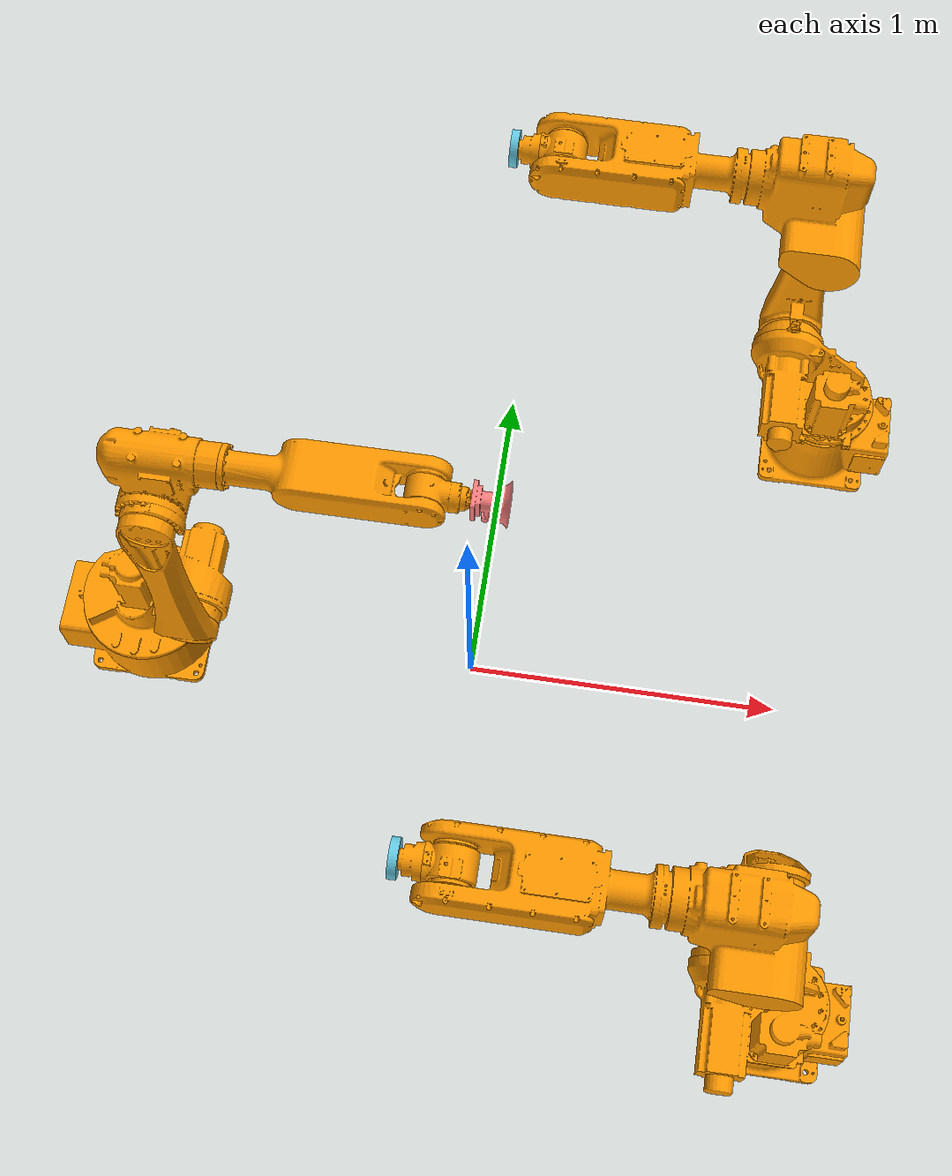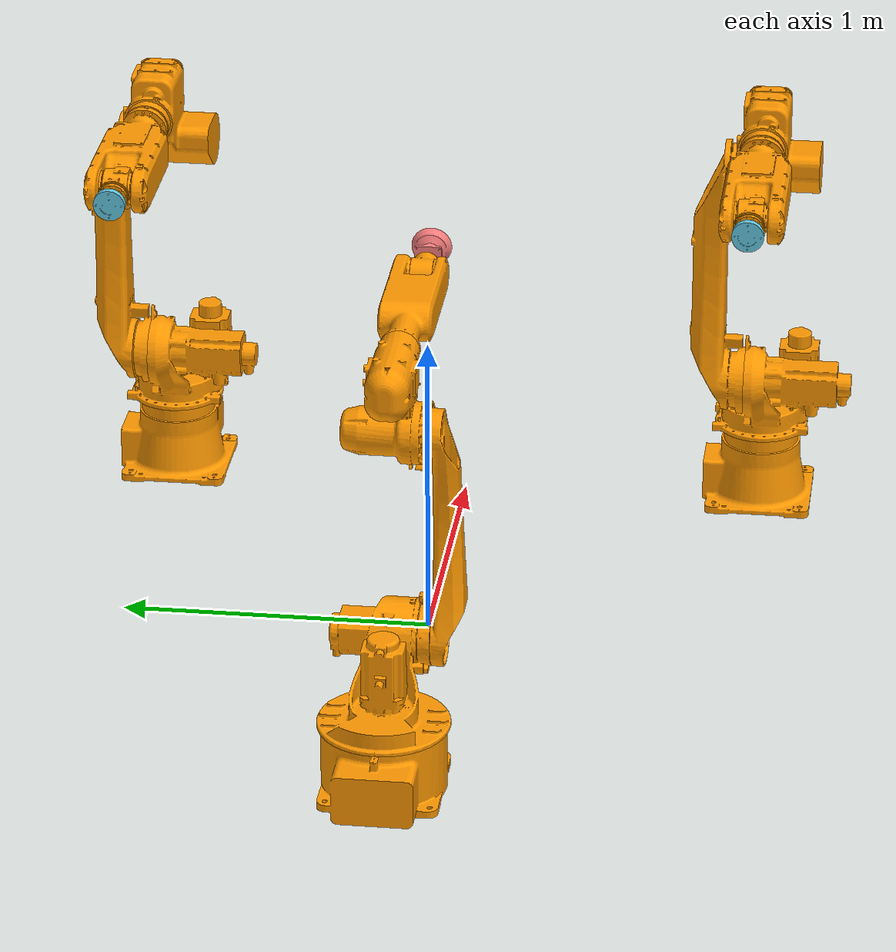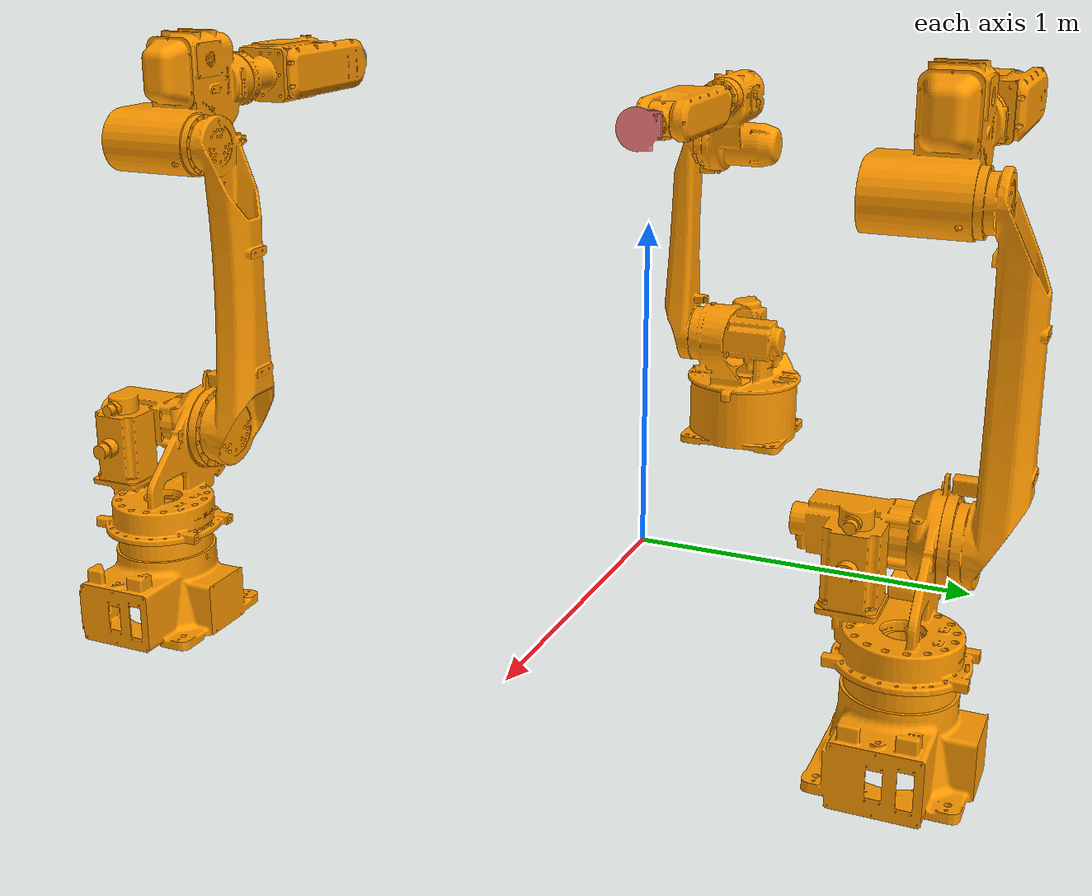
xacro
<?xml version="1.0"?>
<robot name="assembly" xmlns:xacro="http://wiki.ros.org/xacro" >

    <!-- sai号-->
    <material name="LightGrey">
        <color rgba="0.7 0.7 0.7 1.0"/>
    </material>
    <material name="Orange">
        <color rgba="1 0.6 0 1.0"/>
    </material>
    <material name="blue">
        <color rgba="0.4 0.8 0.9 1.0"/>
    </material>

    <!-- 包含末端工具与桌子描述文件-->
    <xacro:include filename="$(find multibot_efort)/urdf/env.urdf.xacro" />
    <!-- polishing tool -->
    <xacro:include filename="$(find multibot_efort)/urdf/polish_tool.urdf.xacro" />
    <!-- DH robotics gripper -->

    <!-- 包含机器人描述文件-->
        <!-- er10-->
    <xacro:include filename="$(find multibot_efort)/urdf/er10.urdf.xacro" />
        <!-- er20-->
    <xacro:property name="prefix1" value="left"/>
    <xacro:property name="prefix2" value="right"/>
    <xacro:include filename="$(find multibot_efort)/urdf/er20.urdf.xacro" />

    <!-- 创建机器人-->
    <xacro:er10 joint_limited="true" />
    <xacro:er20 prefix="left" joint_limited="true" />
    <xacro:er20 prefix="right" joint_limited="true" />

    <!-- 创建末端工具，桌子-->
    <xacro:flange prefix="left" />
    <xacro:flange prefix="right" />
    <xacro:polishing_tool/>
    <!-- TODO embed URDF in xacro -->

    <!-- 工具绑定到机器人末端-->
        <!-- left flange-->
    <joint name="${prefix1}_flange_joint" type="fixed">
        <parent link="${prefix1}_link_6"/>
        <child link="${prefix1}_flange" />
        <origin xyz="0.0615 0.0 0.0" rpy="0.0 0.0 0.0"/>
    </joint>

        <!-- right flange-->
    <joint name="${prefix2}_flange_joint" type="fixed">
        <parent link="${prefix2}_link_6"/>
        <child link="${prefix2}_flange" />
        <origin xyz="0.0615 0.0 0.0" rpy="0.0 0.0 0.0"/>
    </joint>

        <!-- gun-->

    <joint name="polish_tool_fix" type="fixed">
        <parent link="link_6"/>
        <child link="polishing_tool"/>
        <origin xyz="0.03 0.0 0.0" rpy="0.0 1.57 0.0"/>
    </joint>

    <!-- 创建世界坐标系，布局的绝对参考坐标，桌子与世界坐标重合-->
    <link name="world"/>

        <!-- left er20 robot-->
    <joint name="${prefix1}_er20_world_joint" type="fixed">
        <parent link="world"/>
        <child link="${prefix1}_base_link" />
        <origin xyz="1.05 -1 0.015" rpy="0.0 0.0 3.1416"/>
    </joint>
        <!-- right er20 robot-->
    <joint name="${prefix2}_er20_world_joint" type="fixed">
        <parent link="world"/>
        <child link="${prefix2}_base_link" />
        <origin xyz="1.05 1 0.015" rpy="0.0 0.0 -3.1416"/>
    </joint>
        <!-- er10 robot-->
    <joint name="er10_world_joint" type="fixed">
        <parent link="world"/>
        <child link="base_link" />
        <origin xyz="-1.05 0.0 0.015" rpy="0.0 0.0 0.0"/>
    </joint>

</robot>

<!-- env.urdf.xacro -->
<robot xmlns:xacro="http://wiki.ros.org/xacro">

    <!-- 桌子只需一个,无需前缀-->
    <xacro:macro name="table" >
        <link name="table">
            <inertial>
                <origin xyz="-0.01951 -0.0044947 0.72865"
                        rpy="0 0 0" />
                <mass value="10.085" />
                <inertia ixx="1.24263631054945" ixy="0.0804535114069114" ixz="0.0139586437225214"
                        iyy="0.840241125299175" iyz="0.00269664896323875" izz="1.26410505522419" />
            </inertial>

            <visual>
                <origin xyz="0 0 0"
                        rpy="0 0 0" />
                <geometry>
                <mesh filename="package://multibot_efort/meshes/table.STL" />
                </geometry>
                <material name="LightGrey"/>
            </visual>

            <collision>
                <origin xyz="0 0 0"
                        rpy="0 0 0" />
                <geometry>
                <mesh filename="package://multibot_efort/meshes/table.STL" />
                </geometry>
            </collision>
        </link>
    </xacro:macro>

    <!-- flange，需要前缀-->
    <xacro:macro name="flange" params="prefix" >
        <link name="${prefix}_flange">
            <inertial>
            <origin xyz="0.010382 0 0"
                    rpy="0 0 0" />
            <mass value="0.12975" />
            <inertia ixx="0.00019316467668396" ixy="0" ixz="0"
                    iyy="0.000102344046242558" iyz="0" izz="0.000102344046242558" />
            </inertial>

            <visual>
            <origin xyz="0 0 0"
                    rpy="0 0 0" />
            <geometry>
                <mesh filename="package://multibot_efort/meshes/flange.STL" />
            </geometry>
            <material name="blue"/>
            </visual>

            <collision>
            <origin xyz="0 0 0"
                    rpy="0 0 0" />
            <geometry>
                <mesh filename="package://multibot_efort/meshes/flange.STL" />
            </geometry>
            </collision>
        </link>
    </xacro:macro>

    <!-- gun，无需前缀-->
    <xacro:macro name="gun" >
        <link name="gun">
            <inertial>
              <origin xyz="0.13691 0 -0.0083983"
                      rpy="0 0 0" />
              <mass value="0.2335" />
              <inertia ixx="0.000173441157555519" ixy="0" ixz="0.000364979207229041"
                       iyy="0.00238371074676877" iyz="0" izz="0.0022791073994479" />
            </inertial>

            <visual>
              <origin xyz="0 0 0"
                      rpy="0 0 0" />
              <geometry>
                <mesh filename="package://multibot_efort/meshes/gun.STL" />
              </geometry>
              <material name="blue"/>
            </visual>

            <collision>
              <origin xyz="0 0 0"
                      rpy="0 0 0" />
              <geometry>
                <mesh filename="package://multibot_efort/meshes/gun.STL" />
              </geometry>
            </collision>
        </link>
	<link name="tail_link"/>
	<joint name="tail_joint" type="fixed">
	    <parent link="gun" />
	    <child link="tail_link" />
	    <origin xyz="0.37213 0 -0.11131" rpy="0 0 0" />
	</joint>
    </xacro:macro>

<xacro:macro name="polish_tool">
    <link name="polish_tool">
    <inertial>
      <origin xyz="0.00353630999156922 6.45268012466893E-07 0.0422326873169609" rpy="0 0 0" />
      <mass value="0.2169540245871" />
        <inertia
        ixx="0.00044465109545084"
        ixy="5.63674253738281E-09"
        ixz="3.6069547942308E-06"
        iyy="0.000482096071544166"
        iyz="-6.84564438717888E-09"
        izz="0.000330044803901056" />
    </inertial>
        <visual>
            <origin xyz="0 0 0" rpy="0 0 0" />
            <geometry>
                <mesh filename="package://multibot_efort/meshes/polish_tool.STL" />
            </geometry>
            <material name="">
                <color rgba="1 1 1 1" />
            </material>
        </visual>
        <collision>
            <origin xyz="0 0 0" rpy="0 0 0" />
            <geometry>
                <mesh filename="package://multibot_efort/meshes/polish_tool.STL" />
            </geometry>
        </collision>
    </link>
</xacro:macro>

</robot>

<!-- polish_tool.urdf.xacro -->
<robot xmlns:xacro="http://wiki.ros.org/xacro">

<xacro:macro name="polishing_tool">
  <link name="polishing_tool">
    <inertial>
      <origin
        xyz="0.00353630999156922 6.45268012466893E-07 0.0422326873169609"
        rpy="0 0 0" />
      <mass value="0.2169540245871" />
      <inertia
        ixx="0.00044465109545084"
        ixy="5.63674253738281E-09"
        ixz="3.6069547942308E-06"
        iyy="0.000482096071544166"
        iyz="-6.84564438717888E-09"
        izz="0.000330044803901056" />
    </inertial>
    <visual>
      <origin xyz="0 0 0" rpy="0 0 0" />
      <geometry>
        <mesh filename="package://multibot_efort/meshes/polishing_tool.STL" />
      </geometry>
      <material name="">
        <color rgba="1 0.5 0.5 1" />
      </material>
    </visual>
    <collision>
      <origin xyz="0 0 0" rpy="0 0 0" />
      <geometry>
        <mesh
          filename="package://multibot_efort/meshes/polishing_tool.STL" />
      </geometry>
    </collision>
  </link>
</xacro:macro>
</robot>

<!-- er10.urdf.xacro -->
<robot xmlns:xacro="http://wiki.ros.org/xacro">

    <!-- 因为只需要一台，不需要前缀-->
    <xacro:macro name="er10"
                 params="joint_limited
                         link_1_lower_limit:=-2.8798 link_1_upper_limit:=2.8798
                         link_2_lower_limit:=-2.3562 link_2_upper_limit:=1.3963
                         link_3_lower_limit:=-1.3090 link_3_upper_limit:=2.8449
                         link_4_lower_limit:=-3.1416 link_4_upper_limit:=3.1416
                         link_5_lower_limit:=-2.2689 link_5_upper_limit:=2.2689
                         link_6_lower_limit:=-6.2832 link_6_upper_limit:=6.2832">
        <!-- 定义质量,SW中没有定义材质，值存在问题-->
        <xacro:property name="base_link_mass" value="23.987"/>
        <xacro:property name="link_1_mass" value="15.617"/>
        <xacro:property name="link_2_mass" value="2.9708"/>
        <xacro:property name="link_3_mass" value="11.338"/>
        <xacro:property name="link_4_mass" value="8.7242"/>
        <xacro:property name="link_5_mass" value="0.86404"/>
        <xacro:property name="link_6_mass" value="0.065514"/>

        <link name="base_link">
            <inertial>
              <origin xyz="-0.0056212 0 0.10746"
                      rpy="0 0 0" />
              <mass value="${base_link_mass}" />
              <inertia ixx="0" ixy="0" ixz="0"
                       iyy="0" iyz="0" izz="0" />
            </inertial>

            <visual>
              <geometry>
                <mesh filename="package://multibot_efort/meshes/er10/base_link.STL" />
              </geometry>
              <material name="Orange" />
            </visual>

            <collision>
              <geometry>
                <mesh filename="package://multibot_efort/meshes/er10/base_link.STL" />
              </geometry>
            </collision>
        </link>
        <!-- link1-->
        <link name="link_1">
          <inertial>
            <origin xyz="0.094373 -0.0050175 0.14722"
                    rpy="0 0 0" />
            <mass value="${link_1_mass}" />
            <inertia ixx="0" ixy="0" ixz="0"
                      iyy="0" iyz="0" izz="0" />
          </inertial>

          <visual>
            <geometry>
              <mesh
                filename="package://multibot_efort/meshes/er10/link_1.STL" />
            </geometry>
            <material name="Orange" />
          </visual>

          <collision>
            <geometry>
              <mesh
                filename="package://multibot_efort/meshes/er10/link_1.STL" />
            </geometry>
          </collision>
        </link>

        <joint name="joint_1" type="revolute">
          <origin xyz="0 0 0.21"
                  rpy="0 0 0" />
          <parent link="base_link" />
          <child link="link_1" />
          <axis xyz="0 0 1" />
          <xacro:unless value="${joint_limited}">
              <limit lower="${-2.0 * pi}" upper="${2.0 *pi}" effort="20" velocity="2.9671" />
          </xacro:unless>
          <xacro:if value="${joint_limited}">
              <limit lower="${link_1_lower_limit}" upper="${link_1_upper_limit}" effort="20" velocity="2.9671" />
          </xacro:if>
        </joint>
        <!-- link2-->
        <link name="link_2">
          <inertial>
            <origin xyz="0.0068855 -0.15544 0.30672"
                    rpy="0 0 0" />
            <mass value="${link_2_mass}" />
            <inertia ixx="0" ixy="0" ixz="0"
                      iyy="0" iyz="0" izz="0" />
          </inertial>

          <visual>
            <geometry>
              <mesh
                filename="package://multibot_efort/meshes/er10/link_2.STL" />
            </geometry>
            <material name="Orange" />
          </visual>

          <collision>
            <geometry>
              <mesh filename="package://multibot_efort/meshes/er10/link_2.STL" />
            </geometry>
          </collision>
        </link>

        <joint  name="joint_2" type="revolute">
          <origin  xyz="0.195 0 0.212"
                    rpy="0 0 0" />
          <parent link="link_1" />
          <child  link="link_2" />
          <axis xyz="0 -1 0" />
          <xacro:unless value="${joint_limited}">
              <limit lower="${-2.0 * pi}" upper="${2.0 *pi}" effort="20" velocity="2.9671" />
          </xacro:unless>
          <xacro:if value="${joint_limited}">
              <limit lower="${link_2_lower_limit}" upper="${link_2_upper_limit}" effort="20" velocity="2.7925" />
          </xacro:if>
        </joint>
        <!-- link3-->
        <link  name="link_3">
          <inertial>
            <origin xyz="0.021264 -0.0041182 0.082782"
                    rpy="0 0 0" />
            <mass value="${link_3_mass}" />
            <inertia ixx="0" ixy="0" ixz="0"
                      iyy="0" iyz="0" izz="0" />
          </inertial>

          <visual>
            <geometry>
              <mesh filename="package://multibot_efort/meshes/er10/link_3.STL" />
            </geometry>
            <material name="Orange" />
          </visual>

          <collision>
            <geometry>
              <mesh filename="package://multibot_efort/meshes/er10/link_3.STL" />
            </geometry>
          </collision>
        </link>

        <joint name="joint_3" type="revolute">
          <origin xyz="0 0 0.68"
                  rpy="0 0 0" />
          <parent link="link_2" />
          <child link="link_3" />
          <axis xyz="0 -1 0" />
          <xacro:unless value="${joint_limited}">
              <limit lower="${-2.0 * pi}" upper="${2.0 *pi}" effort="20" velocity="2.9671" />
          </xacro:unless>
          <xacro:if value="${joint_limited}">
              <limit lower="${link_3_lower_limit}" upper="${link_3_upper_limit}"  effort="20" velocity="3.1416" />
          </xacro:if>
        </joint>
        <!-- link4-->
        <link name="link_4">
          <inertial>
            <origin xyz="0.31875 0.0049527 0"
                    rpy="0 0 0" />
            <mass value="${link_4_mass}" />
            <inertia  ixx="0.0072478" ixy="0.0014639" ixz="0"
                      iyy="0.030284"  iyz="0" izz="0.037503" />
          </inertial>

          <visual>
            <geometry>
              <mesh
                filename="package://multibot_efort/meshes/er10/link_4.STL" />
            </geometry>
            <material name="Orange" />
          </visual>

          <collision>
            <geometry>
              <mesh
                filename="package://multibot_efort/meshes/er10/link_4.STL" />
            </geometry>
          </collision>
        </link>

        <joint name="joint_4" type="revolute">
          <origin xyz="0.2045 0 0.175"
                  rpy="0 0 0" />
          <parent link="link_3" />
          <child link="link_4" />
          <axis xyz="1 0 0" />
          <xacro:unless value="${joint_limited}">
              <limit lower="${-2.0 * pi}" upper="${2.0 *pi}" effort="20" velocity="2.9671" />
          </xacro:unless>
          <xacro:if value="${joint_limited}">
              <limit lower="${link_4_lower_limit}" upper="${link_4_upper_limit}"  effort="20" velocity="5.7596" />
          </xacro:if>
        </joint>
        <!-- link5-->
        <link name="link_5">
          <inertial>
            <origin xyz="0.018888 -0.0096333 -0.00018357"
                    rpy="0 0 0" />
            <mass value="${link_5_mass}" />
            <inertia ixx="0.00039655" ixy="-0.00015969" ixz="0"
                      iyy="0.00061483" iyz="0" izz="0.0009914" />
          </inertial>
          <visual>
            <geometry>
              <mesh  filename="package://multibot_efort/meshes/er10/link_5.STL" />
            </geometry>
            <material name="Orange" />
          </visual>

          <collision>
            <geometry>
              <mesh
                filename="package://multibot_efort/meshes/er10/link_5.STL" />
            </geometry>
          </collision>
        </link>

        <joint name="joint_5" type="revolute">
          <origin xyz="0.54 0 0"
                  rpy="0 0 0" />
          <parent link="link_4" />
          <child link="link_5" />
          <axis xyz="0 -1 0" />
          <xacro:unless value="${joint_limited}">
              <limit lower="${-2.0 * pi}" upper="${2.0 *pi}" effort="20" velocity="2.9671" />
          </xacro:unless>
          <xacro:if value="${joint_limited}">
              <limit lower="${link_5_lower_limit}" upper="${link_5_upper_limit}" effort="20" velocity="6.2832" />
          </xacro:if>
        </joint>
        <!-- link6-->
        <link name="link_6">
          <inertial>
            <origin xyz="0.010372 0 0"
                    rpy="0 0 0" />
            <mass value="${link_6_mass}" />
            <inertia ixx="0" ixy="0" ixz="0"
                      iyy="0" iyz="0" izz="0" />
          </inertial>
          <visual>
            <geometry>
              <mesh filename="package://multibot_efort/meshes/er10/link_6.STL" />
            </geometry>
            <material name="Orange" />
          </visual>

          <collision>
            <geometry>
              <mesh filename="package://multibot_efort/meshes/er10/link_6.STL" />
            </geometry>
          </collision>
        </link>

        <joint name="joint_6" type="revolute">
          <origin xyz="0.095 0 0"
                  rpy="0.000 0 0" />
          <parent link="link_5" />
          <child link="link_6" />
          <axis xyz="1 0 0" />
          <xacro:unless value="${joint_limited}">
              <limit lower="${-2.0 * pi}" upper="${2.0 *pi}" effort="20" velocity="2.9671" />
          </xacro:unless>
          <xacro:if value="${joint_limited}">
              <limit lower="${link_6_lower_limit}" upper="${link_6_upper_limit}" effort="10" velocity="10.472" />
          </xacro:if>
        </joint>
    </xacro:macro>
</robot>

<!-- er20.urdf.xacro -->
<robot xmlns:xacro="http://wiki.ros.org/xacro">

    <!-- 需要两台，需要左右前缀-->
    <xacro:macro name="er20"
                 params="prefix joint_limited
                         link_1_lower_limit:=-3.0543 link_1_upper_limit:=3.0543
                         link_2_lower_limit:=-2.4784 link_2_upper_limit:=1.117
                         link_3_lower_limit:=-1.2741 link_3_upper_limit:=2.618
                         link_4_lower_limit:=-3.1067 link_4_upper_limit:=3.1067
                         link_5_lower_limit:=-2.3038 link_5_upper_limit:=2.3038
                         link_6_lower_limit:=-12.566 link_6_upper_limit:=12.566">
        <!-- 定义质量,SW中没有定义材质，值存在问题-->
        <xacro:property name="base_link_mass" value="26.887"/>
        <xacro:property name="link_1_mass" value="26.887"/>
        <xacro:property name="link_2_mass" value="26.887"/>
        <xacro:property name="link_3_mass" value="0.044815"/>
        <xacro:property name="link_4_mass" value="26.887"/>
        <xacro:property name="link_5_mass" value="26.887"/>
        <xacro:property name="link_6_mass" value="26.887"/>

        <link name="${prefix}_base_link">
            <inertial>
              <origin xyz="0.17709 0.15738 0.51058"
                      rpy="0 0 0" />
              <mass value="${base_link_mass}" />
              <inertia ixx="7.994" ixy="0.1741" ixz="-2.937"
                       iyy="8.7913" iyz="0.25399" izz="2.7535" />
            </inertial>

            <visual>
              <geometry>
                <mesh
                  filename="package://multibot_efort/meshes/er20/base_link.STL" />
              </geometry>
              <material name="Orange"/>
            </visual>

            <collision>
              <geometry>
                <mesh
                  filename="package://multibot_efort/meshes/er20/base_link.STL" />
              </geometry>
            </collision>
          </link>

          <link name="${prefix}_link_1">
            <inertial>
              <origin xyz="0.17709 0.15738 0.24258"
                      rpy="0 0 0" />
              <mass value="${link_1_mass}" />
              <inertia ixx="7.994" ixy="0.1741" ixz="-2.937"
                       iyy="8.7913" iyz="0.25399" izz="2.7535" />
            </inertial>

            <visual>
              <geometry>
                <mesh filename="package://multibot_efort/meshes/er20/link_1.STL" />
              </geometry>
              <material name="Orange"/>
            </visual>

            <collision>
              <geometry>
                <mesh
                  filename="package://multibot_efort/meshes/er20/link_1.STL" />
              </geometry>
            </collision>
          </link>

          <joint name="${prefix}_joint_1" type="revolute">
            <origin xyz="0 0 0.268"
                    rpy="0 0 0" />
            <parent link="${prefix}_base_link" />
            <child link="${prefix}_link_1" />
            <axis xyz="0 0 1" />
            <xacro:unless value="${joint_limited}">
                <limit lower="${-2.0 * pi}" upper="${2.0 *pi}" effort="42" velocity="2.9671" />
            </xacro:unless>
            <xacro:if value="${joint_limited}">
                <limit lower="${link_1_lower_limit}" upper="${link_1_upper_limit}" effort="42" velocity="2.9671" />
            </xacro:if>
          </joint>

          <link name="${prefix}_link_2">
            <inertial>
              <origin xyz="0.0070856 0.15738 0.0075837"
                      rpy="0 0 0" />
              <mass value="${link_2_mass}" />
              <inertia ixx="7.994" ixy="0.1741" ixz="-2.937"
                       iyy="8.7913" iyz="0.25399" izz="2.7535" />
            </inertial>

            <visual>
              <geometry>
                <mesh filename="package://multibot_efort/meshes/er20/link_2.STL" />
              </geometry>
              <material name="Orange"/>
            </visual>

            <collision>
              <geometry>
                <mesh filename="package://multibot_efort/meshes/er20/link_2.STL" />
              </geometry>
            </collision>
          </link>

          <joint name="${prefix}_joint_2" type="revolute">
            <origin xyz="0.17 0 0.235"
                    rpy="0 0 0" />
            <parent link="${prefix}_link_1" />
            <child link="${prefix}_link_2" />
            <axis  xyz="0 -1 0" />

            <xacro:unless value="${joint_limited}">
                <limit lower="${-2.0 * pi}" upper="${2.0 *pi}" effort="42" velocity="2.618" />
            </xacro:unless>
            <xacro:if value="${joint_limited}">
                <limit lower="${link_2_lower_limit}" upper="${link_2_upper_limit}" effort="42" velocity="2.618" />
            </xacro:if>
          </joint>

          <link name="${prefix}_link_3">
            <inertial>
              <origin xyz="0.023829 0.17985 0.0088526"
                      rpy="0 0 0" />
              <mass value="${link_3_mass}" />
              <inertia ixx="0" ixy="0" ixz="0"
                       iyy="0" iyz="0" izz="0" />
            </inertial>

            <visual>
              <origin xyz="0 0 0"
                      rpy="0 0 0" />
              <geometry>
                <mesh filename="package://multibot_efort/meshes/er20/link_3.STL" />
              </geometry>
              <material name="Orange"/>
            </visual>

            <collision>
              <geometry>
                <mesh filename="package://multibot_efort/meshes/er20/link_3.STL" />
              </geometry>
            </collision>
          </link>

          <joint name="${prefix}_joint_3" type="revolute">
            <origin xyz="0 0 0.78" rpy="0 0 0" />
            <parent link="${prefix}_link_2" />
            <child link="${prefix}_link_3" />
            <axis xyz="0 -1 0" />

            <xacro:unless value="${joint_limited}">
                <limit lower="${-2.0 * pi}" upper="${2.0 *pi}" effort="42" velocity="2.5482" />
            </xacro:unless>
            <xacro:if value="${joint_limited}">
                <limit lower="${link_3_lower_limit}" upper="${link_3_upper_limit}"  effort="42" velocity="2.5482" />
            </xacro:if>
          </joint>

          <link name="${prefix}_link_4">
            <inertial>
              <origin xyz="-0.25041 0.15738 -0.91242"
                      rpy="0 0 0" />
              <mass value="${link_4_mass}" />
              <inertia ixx="7.994" ixy="0.1741" ixz="-2.937"
                       iyy="8.7913" iyz="0.25399" izz="2.7535" />
            </inertial>

            <visual>
              <geometry>
                <mesh filename="package://multibot_efort/meshes/er20/link_4.STL" />
              </geometry>
              <material name="Orange"/>
            </visual>

            <collision>
              <geometry>
                <mesh filename="package://multibot_efort/meshes/er20/link_4.STL" />
              </geometry>
            </collision>
          </link>

          <joint name="${prefix}_joint_4" type="revolute">
            <origin xyz="0.2575 0 0.14"
                    rpy="0 0 0" />
            <parent link="${prefix}_link_3" />
            <child link="${prefix}_link_4" />
            <axis xyz="1 0 0" />
            <xacro:unless value="${joint_limited}">
                <limit lower="${-2.0 * pi}" upper="${2.0 *pi}" effort="42" velocity="6.2832" />
            </xacro:unless>
            <xacro:if value="${joint_limited}">
                <limit lower="${link_4_lower_limit}" upper="${link_4_upper_limit}"  effort="42" velocity="6.2832" />
            </xacro:if>
          </joint>

          <link name="${prefix}_link_5">
            <inertial>
              <origin xyz="-0.75291 0.15738 -0.91242"
                      rpy="0 0 0" />
              <mass value="${link_5_mass}" />
              <inertia ixx="7.994" ixy="0.1741" ixz="-2.937"
                       iyy="8.7913" iyz="0.25399" izz="2.7535" />
            </inertial>

            <visual>
              <geometry>
                <mesh filename="package://multibot_efort/meshes/er20/link_5.STL" />
              </geometry>
              <material name="Orange"/>
            </visual>

            <collision>
              <geometry>
                <mesh filename="package://multibot_efort/meshes/er20/link_5.STL" />
              </geometry>
            </collision>
          </link>

          <joint name="${prefix}_joint_5" type="revolute">
            <origin xyz="0.5025 0 0"
                    rpy="0 0 0" />
            <parent link="${prefix}_link_4" />
            <child link="${prefix}_link_5" />
            <axis xyz="0 -1 0" />
            <xacro:unless value="${joint_limited}">
                <limit lower="${-2.0 * pi}" upper="${2.0 *pi}" effort="42" velocity="6.2832" />
            </xacro:unless>
            <xacro:if value="${joint_limited}">
                <limit lower="${link_5_lower_limit}" upper="${link_5_upper_limit}" effort="42" velocity="6.2832" />
            </xacro:if>
          </joint>

          <link name="${prefix}_link_6">
            <inertial>
              <origin xyz="-0.81642 0.15737 -0.91242"
                      rpy="0 0 0" />
              <mass value="${link_6_mass}" />
              <inertia ixx="7.994" ixy="0.1741" ixz="-2.937"
                       iyy="8.7913" iyz="0.25399" izz="2.7535" />
            </inertial>

            <visual>
              <geometry>
                <mesh filename="package://multibot_efort/meshes/er20/link_6.STL" />
              </geometry>
              <material name="Orange"/>
            </visual>

            <collision>
              <geometry>
                <mesh filename="package://multibot_efort/meshes/er20/link_6.STL" />
              </geometry>
            </collision>
          </link>

          <joint name="${prefix}_joint_6" type="revolute">
            <origin xyz="0.063504 0 0"
                    rpy="0 0 0" />
            <parent link="${prefix}_link_5" />
            <child link="${prefix}_link_6" />
            <axis xyz="1 0 0" />
            <xacro:unless value="${joint_limited}">
                <limit lower="${-2.0 * pi}" upper="${2.0 *pi}" effort="20" velocity="9.5993" />
            </xacro:unless>
            <xacro:if value="${joint_limited}">
                <limit lower="${link_6_lower_limit}" upper="${link_6_upper_limit}" effort="20" velocity="9.5993" />
            </xacro:if>
          </joint>
    </xacro:macro>
</robot>
